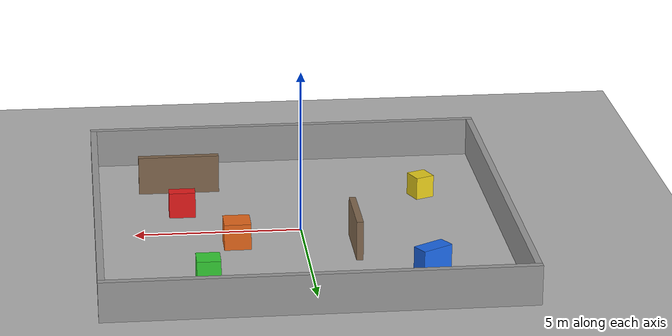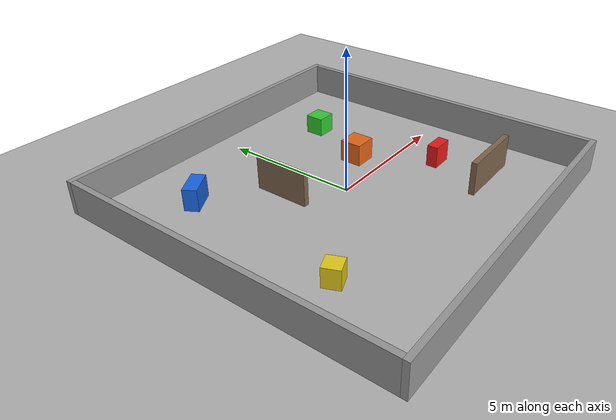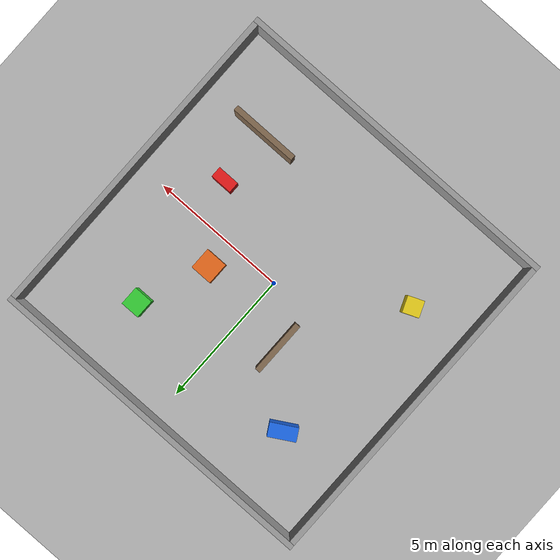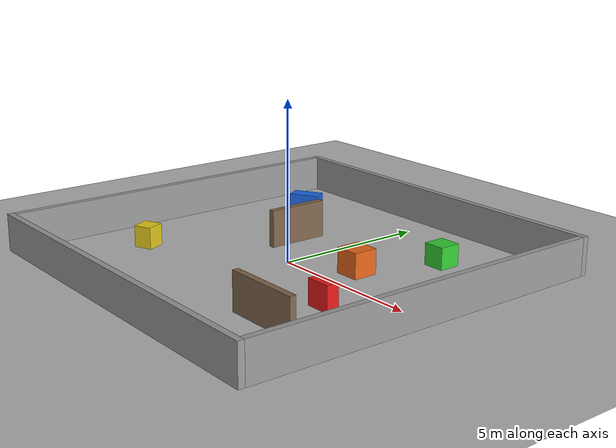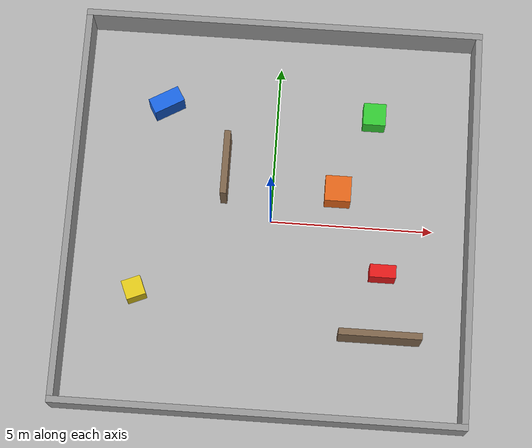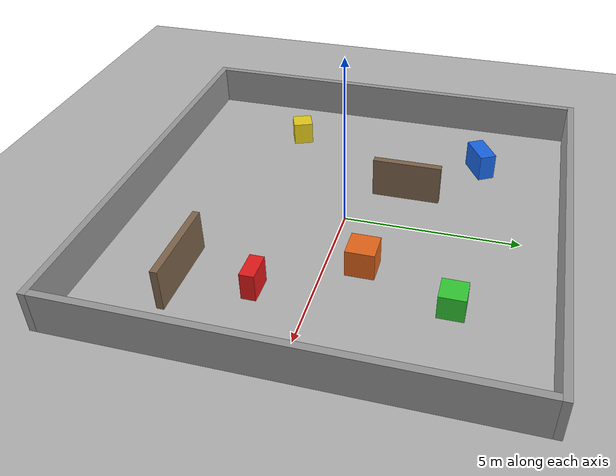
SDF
<?xml version="1.0" ?>
<sdf version="1.6">
  <world name="dog_world">

    <!-- Required system plugins (same as empty.sdf) -->
    <plugin filename="ignition-gazebo-physics-system"
            name="ignition::gazebo::systems::Physics"/>
    <plugin filename="ignition-gazebo-user-commands-system"
            name="ignition::gazebo::systems::UserCommands"/>
    <plugin filename="ignition-gazebo-scene-broadcaster-system"
            name="ignition::gazebo::systems::SceneBroadcaster"/>
    <plugin filename="ignition-gazebo-contact-system"
            name="ignition::gazebo::systems::Contact"/>
    <plugin filename="ignition-gazebo-sensors-system"
            name="ignition::gazebo::systems::Sensors">
      <render_engine>ogre</render_engine>
    </plugin>

    <!-- Physics -->
    <gravity>0 0 -9.81</gravity>
    <magnetic_field>6e-06 2.3e-05 -4.2e-05</magnetic_field>
    <atmosphere type="adiabatic"/>

    <!-- Lighting -->
    <light type="directional" name="sun">
      <cast_shadows>true</cast_shadows>
      <pose>0 0 10 0 0 0</pose>
      <diffuse>0.8 0.8 0.8 1</diffuse>
      <specular>0.2 0.2 0.2 1</specular>
      <attenuation>
        <range>1000</range>
        <constant>0.9</constant>
        <linear>0.01</linear>
        <quadratic>0.001</quadratic>
      </attenuation>
      <direction>-0.5 0.1 -0.9</direction>
    </light>

    <!-- ── Ground plane ─────────────────────────────────────────── -->
    <model name="ground_plane">
      <static>true</static>
      <link name="link">
        <collision name="surface">
          <geometry>
            <plane>
              <normal>0 0 1</normal>
              <size>100 100</size>
            </plane>
          </geometry>
          <surface>
            <friction>
              <ode><mu>1.0</mu><mu2>1.0</mu2></ode>
            </friction>
          </surface>
        </collision>
        <visual name="visual">
          <geometry>
            <plane><normal>0 0 1</normal><size>100 100</size></plane>
          </geometry>
          <material>
            <ambient>0.7 0.7 0.7 1</ambient>
            <diffuse>0.7 0.7 0.7 1</diffuse>
          </material>
        </visual>
      </link>
    </model>

    <!-- ── Outer room walls (12 m × 12 m, 0.2 m thick, 1.2 m tall) ── -->

    <model name="wall_north">
      <static>true</static>
      <pose>0 6.1 0.6 0 0 0</pose>
      <link name="link">
        <collision name="col"><geometry><box><size>12.4 0.2 1.2</size></box></geometry></collision>
        <visual name="vis">
          <geometry><box><size>12.4 0.2 1.2</size></box></geometry>
          <material><ambient>0.6 0.6 0.6 1</ambient><diffuse>0.6 0.6 0.6 1</diffuse></material>
        </visual>
      </link>
    </model>

    <model name="wall_south">
      <static>true</static>
      <pose>0 -6.1 0.6 0 0 0</pose>
      <link name="link">
        <collision name="col"><geometry><box><size>12.4 0.2 1.2</size></box></geometry></collision>
        <visual name="vis">
          <geometry><box><size>12.4 0.2 1.2</size></box></geometry>
          <material><ambient>0.6 0.6 0.6 1</ambient><diffuse>0.6 0.6 0.6 1</diffuse></material>
        </visual>
      </link>
    </model>

    <model name="wall_east">
      <static>true</static>
      <pose>6.1 0 0.6 0 0 0</pose>
      <link name="link">
        <collision name="col"><geometry><box><size>0.2 12.0 1.2</size></box></geometry></collision>
        <visual name="vis">
          <geometry><box><size>0.2 12.0 1.2</size></box></geometry>
          <material><ambient>0.6 0.6 0.6 1</ambient><diffuse>0.6 0.6 0.6 1</diffuse></material>
        </visual>
      </link>
    </model>

    <model name="wall_west">
      <static>true</static>
      <pose>-6.1 0 0.6 0 0 0</pose>
      <link name="link">
        <collision name="col"><geometry><box><size>0.2 12.0 1.2</size></box></geometry></collision>
        <visual name="vis">
          <geometry><box><size>0.2 12.0 1.2</size></box></geometry>
          <material><ambient>0.6 0.6 0.6 1</ambient><diffuse>0.6 0.6 0.6 1</diffuse></material>
        </visual>
      </link>
    </model>

    <!-- ── Interior short walls ──────────────────────────────────── -->

    <!-- W1: vertical stub wall near centre-left, creates a chokepoint -->
    <model name="interior_wall_1">
      <static>true</static>
      <pose>-1.5 1.5 0.6 0 0 0</pose>
      <link name="link">
        <collision name="col"><geometry><box><size>0.2 2.0 1.2</size></box></geometry></collision>
        <visual name="vis">
          <geometry><box><size>0.2 2.0 1.2</size></box></geometry>
          <material><ambient>0.5 0.4 0.3 1</ambient><diffuse>0.5 0.4 0.3 1</diffuse></material>
        </visual>
      </link>
    </model>

    <!-- W2: horizontal stub wall near south-east, forces a detour -->
    <model name="interior_wall_2">
      <static>true</static>
      <pose>3.5 -3.5 0.6 0 0 0</pose>
      <link name="link">
        <collision name="col"><geometry><box><size>2.5 0.2 1.2</size></box></geometry></collision>
        <visual name="vis">
          <geometry><box><size>2.5 0.2 1.2</size></box></geometry>
          <material><ambient>0.5 0.4 0.3 1</ambient><diffuse>0.5 0.4 0.3 1</diffuse></material>
        </visual>
      </link>
    </model>

    <!-- ── Box obstacles ─────────────────────────────────────────── -->

    <!-- B1: orange box, centre-right -->
    <model name="box1">
      <static>true</static>
      <pose>2.0 1.0 0.4 0 0 0</pose>
      <link name="link">
        <collision name="col"><geometry><box><size>0.8 0.8 0.8</size></box></geometry></collision>
        <visual name="vis">
          <geometry><box><size>0.8 0.8 0.8</size></box></geometry>
          <material><ambient>0.9 0.4 0.1 1</ambient><diffuse>0.9 0.4 0.1 1</diffuse></material>
        </visual>
      </link>
    </model>

    <!-- B2: blue box, north-west -->
    <model name="box2">
      <static>true</static>
      <pose>-3.5 3.5 0.4 0 0 0.5236</pose>
      <link name="link">
        <collision name="col"><geometry><box><size>1.0 0.5 0.8</size></box></geometry></collision>
        <visual name="vis">
          <geometry><box><size>1.0 0.5 0.8</size></box></geometry>
          <material><ambient>0.1 0.4 0.9 1</ambient><diffuse>0.1 0.4 0.9 1</diffuse></material>
        </visual>
      </link>
    </model>

    <!-- B3: green box, north-east -->
    <model name="box3">
      <static>true</static>
      <pose>3.0 3.5 0.35 0 0 0</pose>
      <link name="link">
        <collision name="col"><geometry><box><size>0.7 0.7 0.7</size></box></geometry></collision>
        <visual name="vis">
          <geometry><box><size>0.7 0.7 0.7</size></box></geometry>
          <material><ambient>0.2 0.8 0.2 1</ambient><diffuse>0.2 0.8 0.2 1</diffuse></material>
        </visual>
      </link>
    </model>

    <!-- B4: yellow box, south-west -->
    <model name="box4">
      <static>true</static>
      <pose>-4.0 -2.5 0.35 0 0 0.3927</pose>
      <link name="link">
        <collision name="col"><geometry><box><size>0.6 0.6 0.7</size></box></geometry></collision>
        <visual name="vis">
          <geometry><box><size>0.6 0.6 0.7</size></box></geometry>
          <material><ambient>0.9 0.8 0.1 1</ambient><diffuse>0.9 0.8 0.1 1</diffuse></material>
        </visual>
      </link>
    </model>

    <!-- B5: red box, south-east -->
    <model name="box5">
      <static>true</static>
      <pose>3.5 -1.5 0.4 0 0 0</pose>
      <link name="link">
        <collision name="col"><geometry><box><size>0.8 0.4 0.8</size></box></geometry></collision>
        <visual name="vis">
          <geometry><box><size>0.8 0.4 0.8</size></box></geometry>
          <material><ambient>0.9 0.1 0.1 1</ambient><diffuse>0.9 0.1 0.1 1</diffuse></material>
        </visual>
      </link>
    </model>

  </world>
</sdf>
